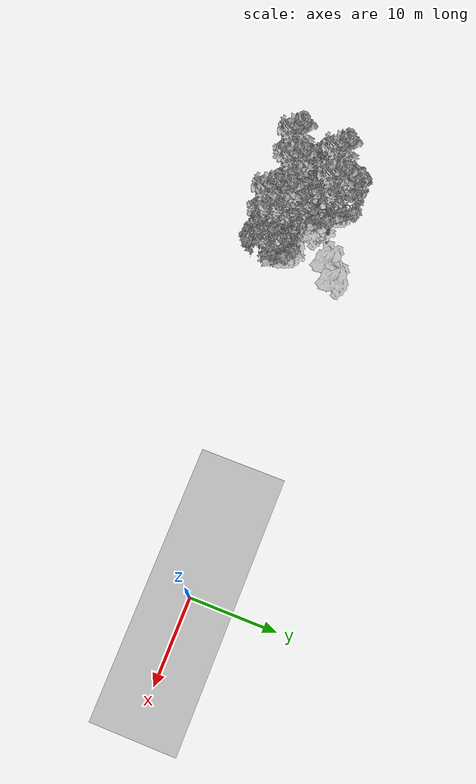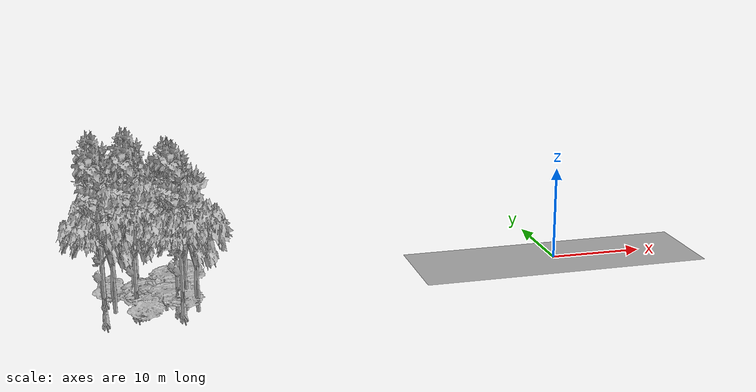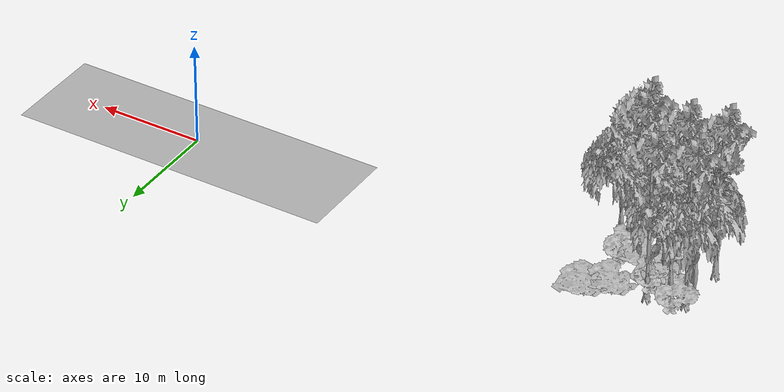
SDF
<sdf version="1.7">
 <world name="default">
  <model name="ground_plane">
   <static>1</static>
   <link name="link">
    <collision name="collision">
     <pose>-50 0 0 0 -0 0</pose>
     <geometry><plane><normal>0 0 1</normal><size>100 100</size></plane></geometry>
     <surface><contact><ode><min_depth>0.01</min_depth><max_vel>0</max_vel></ode></contact></surface>
    </collision>
    <visual name="grass">
     <cast_shadows>0</cast_shadows>
     <geometry>
      <mesh>
       <scale>0.5814285714285714 0.18142857142857144 0.1</scale>
       <uri>file://grass_plane/meshes/grass_plane.dae</uri>
      </mesh>
     </geometry>
    </visual>
   </link>
  </model>
  <model name="Tree 0">
   <static>1</static>
   <pose>-42.261111975902054 -4.697456809183089 0 1.57079 -0 0</pose>
   <link name="link">
    <collision name="collision">
     <geometry><mesh><scale>3 2 3</scale><uri>model://tree_3/meshes/tree_3.obj</uri></mesh></geometry>
    </collision>
    <visual name="visual">
     <geometry><mesh><scale>3 2 3</scale><uri>model://tree_3/meshes/tree_3.obj</uri></mesh></geometry>
    </visual>
   </link>
  </model>
  <model name="Tree 22">
   <static>1</static>
   <pose>-48.03252027512432 -1.5942124357965781 0 1.57079 -0 0</pose>
   <link name="link">
    <collision name="collision">
     <geometry><mesh><scale>3.5 5 3.5</scale><uri>model://tree_9/meshes/tree_9.obj</uri></mesh></geometry>
    </collision>
    <visual name="visual">
     <geometry><mesh><scale>3.5 5 3.5</scale><uri>model://tree_9/meshes/tree_9.obj</uri></mesh></geometry>
    </visual>
   </link>
  </model>
  <model name="Tree 49">
   <static>1</static>
   <pose>-40.82875830894135 -6.872186534187941 0 1.57079 -0 0</pose>
   <link name="link">
    <collision name="collision">
     <geometry><mesh><scale>3.5 5 3.5</scale><uri>model://tree_9/meshes/tree_9.obj</uri></mesh></geometry>
    </collision>
    <visual name="visual">
     <geometry><mesh><scale>3.5 5 3.5</scale><uri>model://tree_9/meshes/tree_9.obj</uri></mesh></geometry>
    </visual>
   </link>
  </model>
  <model name="Tree 89">
   <static>1</static>
   <pose>-40.49140518430086 -5.447730420229197 0 1.57079 -0 0</pose>
   <link name="link">
    <collision name="collision">
     <geometry><mesh><scale>3.5 5 3.5</scale><uri>model://tree_2/meshes/tree_2.obj</uri></mesh></geometry>
    </collision>
    <visual name="visual">
     <geometry><mesh><scale>3.5 5 3.5</scale><uri>model://tree_2/meshes/tree_2.obj</uri></mesh></geometry>
    </visual>
   </link>
  </model>
  <model name="Tree 108">
   <static>1</static>
   <pose>-48.17651424423315 -6.71792750050664 0 1.57079 -0 0</pose>
   <link name="link">
    <collision name="collision">
     <geometry><mesh><scale>3.5 5 3.5</scale><uri>model://tree_9/meshes/tree_9.obj</uri></mesh></geometry>
    </collision>
    <visual name="visual">
     <geometry><mesh><scale>3.5 5 3.5</scale><uri>model://tree_9/meshes/tree_9.obj</uri></mesh></geometry>
    </visual>
   </link>
  </model>
  <model name="Tree 114">
   <static>1</static>
   <pose>-47.592263319537565 -0.9270593265213627 0 1.57079 -0 0</pose>
   <link name="link">
    <collision name="collision">
     <geometry><mesh><scale>4 2.5 4</scale><uri>model://tree_1/meshes/tree_1.obj</uri></mesh></geometry>
    </collision>
    <visual name="visual">
     <geometry><mesh><scale>4 2.5 4</scale><uri>model://tree_1/meshes/tree_1.obj</uri></mesh></geometry>
    </visual>
   </link>
  </model>
  <model name="Tree 121">
   <static>1</static>
   <pose>-39.83757102940875 1.5273704383194762 0 1.57079 -0 0</pose>
   <link name="link">
    <collision name="collision">
     <geometry><mesh><scale>3 2 3</scale><uri>model://tree_3/meshes/tree_3.obj</uri></mesh></geometry>
    </collision>
    <visual name="visual">
     <geometry><mesh><scale>3 2 3</scale><uri>model://tree_3/meshes/tree_3.obj</uri></mesh></geometry>
    </visual>
   </link>
  </model>
  <model name="Tree 160">
   <static>1</static>
   <pose>-44.784520652544145 -2.4830405813957395 0 1.57079 -0 0</pose>
   <link name="link">
    <collision name="collision">
     <geometry><mesh><scale>4 2.5 4</scale><uri>model://tree_1/meshes/tree_1.obj</uri></mesh></geometry>
    </collision>
    <visual name="visual">
     <geometry><mesh><scale>4 2.5 4</scale><uri>model://tree_1/meshes/tree_1.obj</uri></mesh></geometry>
    </visual>
   </link>
  </model>
  <model name="Tree 186">
   <static>1</static>
   <pose>-41.19025205534239 -5.603396881726136 0 1.57079 -0 0</pose>
   <link name="link">
    <collision name="collision">
     <geometry><mesh><scale>3.5 5 3.5</scale><uri>model://tree_9/meshes/tree_9.obj</uri></mesh></geometry>
    </collision>
    <visual name="visual">
     <geometry><mesh><scale>3.5 5 3.5</scale><uri>model://tree_9/meshes/tree_9.obj</uri></mesh></geometry>
    </visual>
   </link>
  </model>
  <model name="Tree 198">
   <static>1</static>
   <pose>-41.7455036201321 0.16812786981578043 0 1.57079 -0 0</pose>
   <link name="link">
    <collision name="collision">
     <geometry><mesh><scale>3 2 3</scale><uri>model://tree_3/meshes/tree_3.obj</uri></mesh></geometry>
    </collision>
    <visual name="visual">
     <geometry><mesh><scale>3 2 3</scale><uri>model://tree_3/meshes/tree_3.obj</uri></mesh></geometry>
    </visual>
   </link>
  </model>
  <model name="Tree 204">
   <static>1</static>
   <pose>-47.06534167921612 -0.6365685391866993 0 1.57079 -0 0</pose>
   <link name="link">
    <collision name="collision">
     <geometry><mesh><scale>3.5 5 3.5</scale><uri>model://tree_2/meshes/tree_2.obj</uri></mesh></geometry>
    </collision>
    <visual name="visual">
     <geometry><mesh><scale>3.5 5 3.5</scale><uri>model://tree_2/meshes/tree_2.obj</uri></mesh></geometry>
    </visual>
   </link>
  </model>
  <model name="Tree 275">
   <static>1</static>
   <pose>-45.12746067029055 -5.623839775521255 0 1.57079 -0 0</pose>
   <link name="link">
    <collision name="collision">
     <geometry><mesh><scale>3.5 5 3.5</scale><uri>model://tree_9/meshes/tree_9.obj</uri></mesh></geometry>
    </collision>
    <visual name="visual">
     <geometry><mesh><scale>3.5 5 3.5</scale><uri>model://tree_9/meshes/tree_9.obj</uri></mesh></geometry>
    </visual>
   </link>
  </model>
  <model name="Tree 283">
   <static>1</static>
   <pose>-44.734024877919005 -0.8651370383260719 0 1.57079 -0 0</pose>
   <link name="link">
    <collision name="collision">
     <geometry><mesh><scale>3.5 5 3.5</scale><uri>model://tree_9/meshes/tree_9.obj</uri></mesh></geometry>
    </collision>
    <visual name="visual">
     <geometry><mesh><scale>3.5 5 3.5</scale><uri>model://tree_9/meshes/tree_9.obj</uri></mesh></geometry>
    </visual>
   </link>
  </model>
  <model name="Tree 310">
   <static>1</static>
   <pose>-47.233073272335616 -3.797981007071588 0 1.57079 -0 0</pose>
   <link name="link">
    <collision name="collision">
     <geometry><mesh><scale>3.5 5 3.5</scale><uri>model://tree_2/meshes/tree_2.obj</uri></mesh></geometry>
    </collision>
    <visual name="visual">
     <geometry><mesh><scale>3.5 5 3.5</scale><uri>model://tree_2/meshes/tree_2.obj</uri></mesh></geometry>
    </visual>
   </link>
  </model>
  <model name="Tree 351">
   <static>1</static>
   <pose>-48.205356872049705 -2.8534822551510555 0 1.57079 -0 0</pose>
   <link name="link">
    <collision name="collision">
     <geometry><mesh><scale>3.5 5 3.5</scale><uri>model://tree_2/meshes/tree_2.obj</uri></mesh></geometry>
    </collision>
    <visual name="visual">
     <geometry><mesh><scale>3.5 5 3.5</scale><uri>model://tree_2/meshes/tree_2.obj</uri></mesh></geometry>
    </visual>
   </link>
  </model>
  <model name="Tree 354">
   <static>1</static>
   <pose>-45.175940668799804 -3.010478155379346 0 1.57079 -0 0</pose>
   <link name="link">
    <collision name="collision">
     <geometry><mesh><scale>3.5 5 3.5</scale><uri>model://tree_2/meshes/tree_2.obj</uri></mesh></geometry>
    </collision>
    <visual name="visual">
     <geometry><mesh><scale>3.5 5 3.5</scale><uri>model://tree_2/meshes/tree_2.obj</uri></mesh></geometry>
    </visual>
   </link>
  </model>
  <model name="Tree 456">
   <static>1</static>
   <pose>-44.5400255516699 -6.758882703764444 0 1.57079 -0 0</pose>
   <link name="link">
    <collision name="collision">
     <geometry><mesh><scale>4 2.5 4</scale><uri>model://tree_1/meshes/tree_1.obj</uri></mesh></geometry>
    </collision>
    <visual name="visual">
     <geometry><mesh><scale>4 2.5 4</scale><uri>model://tree_1/meshes/tree_1.obj</uri></mesh></geometry>
    </visual>
   </link>
  </model>
  <model name="Tree 461">
   <static>1</static>
   <pose>-44.662402696553634 -3.1044485688187873 0 1.57079 -0 0</pose>
   <link name="link">
    <collision name="collision">
     <geometry><mesh><scale>3 2 3</scale><uri>model://tree_3/meshes/tree_3.obj</uri></mesh></geometry>
    </collision>
    <visual name="visual">
     <geometry><mesh><scale>3 2 3</scale><uri>model://tree_3/meshes/tree_3.obj</uri></mesh></geometry>
    </visual>
   </link>
  </model>
  <model name="Tree 469">
   <static>1</static>
   <pose>-47.25409416594762 -4.369909837493228 0 1.57079 -0 0</pose>
   <link name="link">
    <collision name="collision">
     <geometry><mesh><scale>3.5 5 3.5</scale><uri>model://tree_2/meshes/tree_2.obj</uri></mesh></geometry>
    </collision>
    <visual name="visual">
     <geometry><mesh><scale>3.5 5 3.5</scale><uri>model://tree_2/meshes/tree_2.obj</uri></mesh></geometry>
    </visual>
   </link>
  </model>
  <model name="Tree 499">
   <static>1</static>
   <pose>-40.59040701064215 -4.739287843441879 0 1.57079 -0 0</pose>
   <link name="link">
    <collision name="collision">
     <geometry><mesh><scale>4 2.5 4</scale><uri>model://tree_1/meshes/tree_1.obj</uri></mesh></geometry>
    </collision>
    <visual name="visual">
     <geometry><mesh><scale>4 2.5 4</scale><uri>model://tree_1/meshes/tree_1.obj</uri></mesh></geometry>
    </visual>
   </link>
  </model>
  <model name="Tree 533">
   <static>1</static>
   <pose>-39.42165006246675 -5.993124333072464 0 1.57079 -0 0</pose>
   <link name="link">
    <collision name="collision">
     <geometry><mesh><scale>3.5 5 3.5</scale><uri>model://tree_2/meshes/tree_2.obj</uri></mesh></geometry>
    </collision>
    <visual name="visual">
     <geometry><mesh><scale>3.5 5 3.5</scale><uri>model://tree_2/meshes/tree_2.obj</uri></mesh></geometry>
    </visual>
   </link>
  </model>
  <model name="Bush 0">
   <static>1</static>
   <pose>-45.077459360053126 -6.442397757890092 0 1.57079 -0 0</pose>
   <link name="link">
    <collision name="collision">
     <geometry><mesh><scale>2 2 2</scale><uri>model://bush_2/meshes/bush_2.obj</uri></mesh></geometry>
     <surface><contact><collide_without_contact>false</collide_without_contact></contact></surface>
    </collision>
    <visual name="visual">
     <geometry><mesh><scale>2 2 2</scale><uri>model://bush_2/meshes/bush_2.obj</uri></mesh></geometry>
    </visual>
   </link>
  </model>
 </world>
</sdf>
